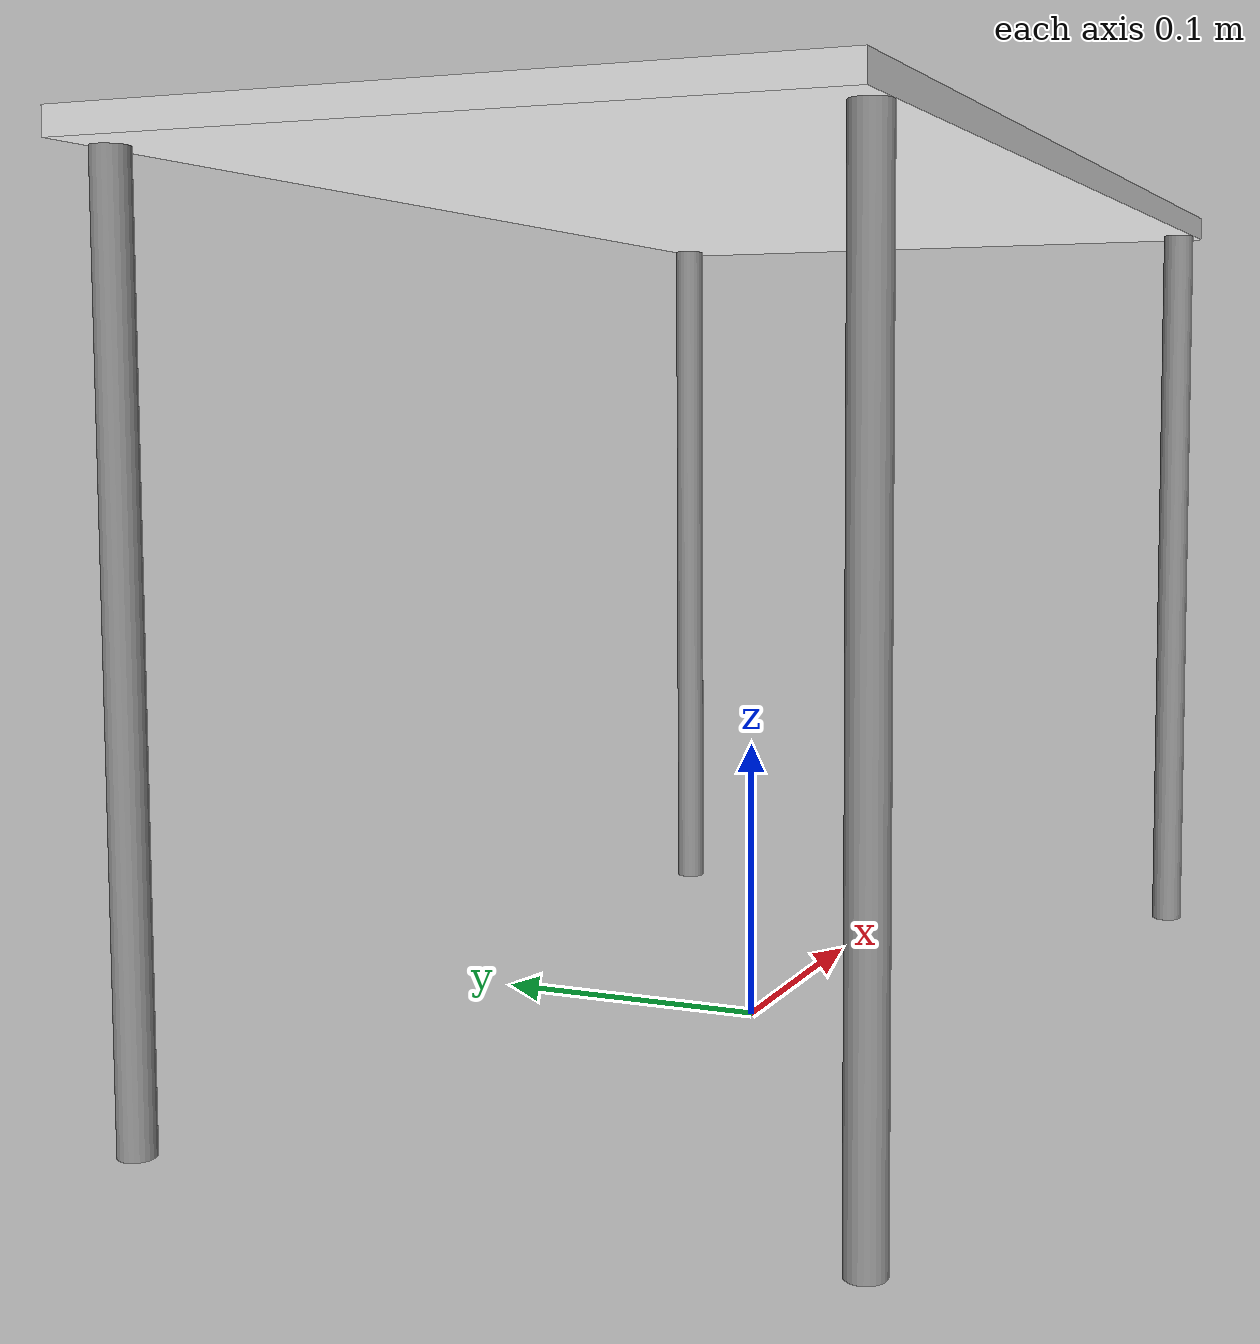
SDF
<?xml version="1.0" ?>
<sdf version="1.5">
  <model name="table1">
    <static>true</static>
    <link name="link">
      <collision name="surface">
        <pose>0 0 0.3 0 0 0</pose>
        <geometry>
          <box>
            <size>0.45 0.24 0.009</size>
          </box>
        </geometry>
        <surface>
          <friction>
            <ode>
              <mu>0.6</mu>
              <mu2>0.6</mu2>
            </ode>
          </friction>
        </surface>
      </collision>
      <visual name="visual1">
        <pose>0 0 0.3 0 0 0</pose>
        <geometry>
          <box>
            <size>0.45 0.24 0.009</size>
          </box>
        </geometry>
        <material>
          <script>
            <uri>file://media/materials/scripts/gazebo.material</uri>
            <name>Gazebo/White</name>
          </script>
        </material>
      </visual>
      <collision name="front_left_leg">2099115
        <pose>0.204 0.114 0.15 0 0 0</pose>
        <geometry>
          <cylinder>
            <radius>0.006</radius>
            <length>0.3</length>
          </cylinder>
        </geometry>
      </collision>
      <visual name="front_left_leg">
        <pose>0.204 0.114 0.15 0 0 0</pose>
        <geometry>
          <cylinder>
            <radius>0.006</radius>
            <length>0.3</length>
          </cylinder>
        </geometry>
        <material>
          <script>
            <uri>file://media/materials/scripts/gazebo.material</uri>
            <name>Gazebo/Grey</name>
          </script>
        </material>
      </visual>
      <collision name="front_right_leg">
        <pose>0.204 -0.114 0.15 0 0 0</pose>
        <geometry>
          <cylinder>
            <radius>0.006</radius>
            <length>0.3</length>
          </cylinder>
        </geometry>
      </collision>
      <visual name="front_right_leg">
        <pose>0.204 -0.114 0.15 0 0 0</pose>
        <geometry>
          <cylinder>
            <radius>0.006</radius>
            <length>0.3</length>
          </cylinder>
        </geometry>
        <material>
          <script>
            <uri>file://media/materials/scripts/gazebo.material</uri>
            <name>Gazebo/Grey</name>
          </script>
        </material>
      </visual>
      <collision name="back_right_leg">
        <pose>-0.204 -0.114 0.15 0 0 0</pose>
        <geometry>
          <cylinder>
            <radius>0.006</radius>
            <length>0.3</length>
          </cylinder>
        </geometry>
      </collision>
      <visual name="back_right_leg">
        <pose>-0.204 -0.114 0.15 0 0 0</pose>
        <geometry>
          <cylinder>
            <radius>0.006</radius>
            <length>0.3</length>
          </cylinder>
        </geometry>
        <material>
          <script>
            <uri>file://media/materials/scripts/gazebo.material</uri>
            <name>Gazebo/Grey</name>
          </script>
        </material>
      </visual>
      <collision name="back_left_leg">
        <pose>-0.204 0.114 0.15 0 0 0</pose>
        <geometry>
          <cylinder>
            <radius>0.006</radius>
            <length>0.3</length>
          </cylinder>
        </geometry>
      </collision>
      <visual name="back_left_leg">
        <pose>-0.204 0.114 0.15 0 0 0</pose>
        <geometry>
          <cylinder>
            <radius>0.006</radius>
            <length>0.3</length>
          </cylinder>
        </geometry>
        <material>
          <script>
            <uri>file://media/materials/scripts/gazebo.material</uri>
            <name>Gazebo/Grey</name>
          </script>
        </material>
      </visual>
    </link>
  </model>
</sdf>
